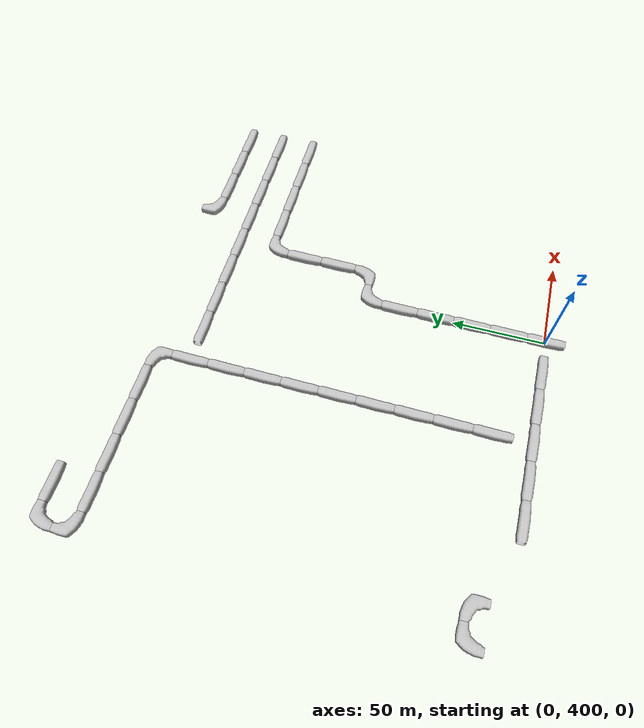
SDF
<sdf version="1.6">
 <world name="cave_16000_0">
  <include>
   <static>true</static>
   <name>cave_-8_21</name>
   <pose>-160 420 0 0 0 -1.5707963267948966</pose>
   <uri>model://cave_L_20m</uri>
  </include>
  <include>
   <static>true</static>
   <name>cave_-7_21</name>
   <pose>-140 420 0 0 0 3.141592653589793</pose>
   <uri>model://cave_L_20m</uri>
  </include>
  <include>
   <static>true</static>
   <name>cave_-5_20</name>
   <pose>-100 400 0 0 0 1.5707963267948966</pose>
   <uri>model://cave_straight_20m</uri>
  </include>
  <include>
   <static>true</static>
   <name>cave_-4_20</name>
   <pose>-80 400 0 0 0 1.5707963267948966</pose>
   <uri>model://cave_straight_20m</uri>
  </include>
  <include>
   <static>true</static>
   <name>cave_-3_20</name>
   <pose>-60 400 0 0 0 1.5707963267948966</pose>
   <uri>model://cave_straight_20m</uri>
  </include>
  <include>
   <static>true</static>
   <name>cave_-2_20</name>
   <pose>-40 400 0 0 0 1.5707963267948966</pose>
   <uri>model://cave_straight_20m</uri>
  </include>
  <include>
   <static>true</static>
   <name>cave_-1_20</name>
   <pose>-20 400 0 0 0 1.5707963267948966</pose>
   <uri>model://cave_straight_20m</uri>
  </include>
  <include>
   <static>true</static>
   <name>cave_0_20</name>
   <pose>0 400 0 0 0 0.0</pose>
   <uri>model://cave_straight_20m</uri>
  </include>
  <include>
   <static>true</static>
   <name>cave_0_21</name>
   <pose>0 420 0 0 0 0.0</pose>
   <uri>model://cave_straight_20m</uri>
  </include>
  <include>
   <static>true</static>
   <name>cave_0_22</name>
   <pose>0 440 0 0 0 0.0</pose>
   <uri>model://cave_straight_20m</uri>
  </include>
  <include>
   <static>true</static>
   <name>cave_0_23</name>
   <pose>0 460 0 0 0 0.0</pose>
   <uri>model://cave_straight_20m</uri>
  </include>
  <include>
   <static>true</static>
   <name>cave_0_24</name>
   <pose>0 480 0 0 0 0.0</pose>
   <uri>model://cave_straight_20m</uri>
  </include>
  <include>
   <static>true</static>
   <name>cave_0_25</name>
   <pose>0 500 0 0 0 -1.5707963267948966</pose>
   <uri>model://cave_L_20m</uri>
  </include>
  <include>
   <static>true</static>
   <name>cave_1_25</name>
   <pose>20 500 0 0 0 1.5707963267948966</pose>
   <uri>model://cave_L_20m</uri>
  </include>
  <include>
   <static>true</static>
   <name>cave_1_26</name>
   <pose>20 520 0 0 0 0.0</pose>
   <uri>model://cave_straight_20m</uri>
  </include>
  <include>
   <static>true</static>
   <name>cave_1_27</name>
   <pose>20 540 0 0 0 0.0</pose>
   <uri>model://cave_straight_20m</uri>
  </include>
  <include>
   <static>true</static>
   <name>cave_1_28</name>
   <pose>20 560 0 0 0 -1.5707963267948966</pose>
   <uri>model://cave_L_20m</uri>
  </include>
  <include>
   <static>true</static>
   <name>cave_2_28</name>
   <pose>40 560 0 0 0 1.5707963267948966</pose>
   <uri>model://cave_straight_20m</uri>
  </include>
  <include>
   <static>true</static>
   <name>cave_3_28</name>
   <pose>60 560 0 0 0 1.5707963267948966</pose>
   <uri>model://cave_straight_20m</uri>
  </include>
  <include>
   <static>true</static>
   <name>cave_4_28</name>
   <pose>80 560 0 0 0 1.5707963267948966</pose>
   <uri>model://cave_straight_20m</uri>
  </include>
  <include>
   <static>true</static>
   <name>cave_5_28</name>
   <pose>100 560 0 0 0 1.5707963267948966</pose>
   <uri>model://cave_straight_20m</uri>
  </include>
  <include>
   <static>true</static>
   <name>cave_2_30</name>
   <pose>40 600 0 0 0 0.0</pose>
   <uri>model://cave_L_20m</uri>
  </include>
  <include>
   <static>true</static>
   <name>cave_3_30</name>
   <pose>60 600 0 0 0 1.5707963267948966</pose>
   <uri>model://cave_straight_20m</uri>
  </include>
  <include>
   <static>true</static>
   <name>cave_4_30</name>
   <pose>80 600 0 0 0 1.5707963267948966</pose>
   <uri>model://cave_straight_20m</uri>
  </include>
  <include>
   <static>true</static>
   <name>cave_5_30</name>
   <pose>100 600 0 0 0 1.5707963267948966</pose>
   <uri>model://cave_straight_20m</uri>
  </include>
  <include>
   <static>true</static>
   <name>cave_5_29</name>
   <pose>100 580 0 0 0 1.5707963267948966</pose>
   <uri>model://cave_straight_20m</uri>
  </include>
  <include>
   <static>true</static>
   <name>cave_4_29</name>
   <pose>80 580 0 0 0 1.5707963267948966</pose>
   <uri>model://cave_straight_20m</uri>
  </include>
  <include>
   <static>true</static>
   <name>cave_3_29</name>
   <pose>60 580 0 0 0 1.5707963267948966</pose>
   <uri>model://cave_straight_20m</uri>
  </include>
  <include>
   <static>true</static>
   <name>cave_2_29</name>
   <pose>40 580 0 0 0 1.5707963267948966</pose>
   <uri>model://cave_straight_20m</uri>
  </include>
  <include>
   <static>true</static>
   <name>cave_1_29</name>
   <pose>20 580 0 0 0 1.5707963267948966</pose>
   <uri>model://cave_straight_20m</uri>
  </include>
  <include>
   <static>true</static>
   <name>cave_0_29</name>
   <pose>0 580 0 0 0 1.5707963267948966</pose>
   <uri>model://cave_straight_20m</uri>
  </include>
  <include>
   <static>true</static>
   <name>cave_-1_29</name>
   <pose>-20 580 0 0 0 1.5707963267948966</pose>
   <uri>model://cave_straight_20m</uri>
  </include>
  <include>
   <static>true</static>
   <name>cave_-2_29</name>
   <pose>-40 580 0 0 0 1.5707963267948966</pose>
   <uri>model://cave_straight_20m</uri>
  </include>
  <include>
   <static>true</static>
   <name>cave_-7_31</name>
   <pose>-140 620 0 0 0 1.5707963267948966</pose>
   <uri>model://cave_straight_20m</uri>
  </include>
  <include>
   <static>true</static>
   <name>cave_-8_31</name>
   <pose>-160 620 0 0 0 -1.5707963267948966</pose>
   <uri>model://cave_L_20m</uri>
  </include>
  <include>
   <static>true</static>
   <name>cave_-8_30</name>
   <pose>-160 600 0 0 0 0.0</pose>
   <uri>model://cave_L_20m</uri>
  </include>
  <include>
   <static>true</static>
   <name>cave_-7_30</name>
   <pose>-140 600 0 0 0 1.5707963267948966</pose>
   <uri>model://cave_straight_20m</uri>
  </include>
  <include>
   <static>true</static>
   <name>cave_-6_30</name>
   <pose>-120 600 0 0 0 1.5707963267948966</pose>
   <uri>model://cave_straight_20m</uri>
  </include>
  <include>
   <static>true</static>
   <name>cave_-5_30</name>
   <pose>-100 600 0 0 0 1.5707963267948966</pose>
   <uri>model://cave_straight_20m</uri>
  </include>
  <include>
   <static>true</static>
   <name>cave_-4_30</name>
   <pose>-80 600 0 0 0 1.5707963267948966</pose>
   <uri>model://cave_straight_20m</uri>
  </include>
  <include>
   <static>true</static>
   <name>cave_-3_30</name>
   <pose>-60 600 0 0 0 3.141592653589793</pose>
   <uri>model://cave_L_20m</uri>
  </include>
  <include>
   <static>true</static>
   <name>cave_-3_29</name>
   <pose>-60 580 0 0 0 0.0</pose>
   <uri>model://cave_straight_20m</uri>
  </include>
  <include>
   <static>true</static>
   <name>cave_-3_28</name>
   <pose>-60 560 0 0 0 0.0</pose>
   <uri>model://cave_straight_20m</uri>
  </include>
  <include>
   <static>true</static>
   <name>cave_-3_27</name>
   <pose>-60 540 0 0 0 0.0</pose>
   <uri>model://cave_straight_20m</uri>
  </include>
  <include>
   <static>true</static>
   <name>cave_-3_26</name>
   <pose>-60 520 0 0 0 0.0</pose>
   <uri>model://cave_straight_20m</uri>
  </include>
  <include>
   <static>true</static>
   <name>cave_-3_25</name>
   <pose>-60 500 0 0 0 0.0</pose>
   <uri>model://cave_straight_20m</uri>
  </include>
  <include>
   <static>true</static>
   <name>cave_-3_24</name>
   <pose>-60 480 0 0 0 0.0</pose>
   <uri>model://cave_straight_20m</uri>
  </include>
  <include>
   <static>true</static>
   <name>cave_-3_23</name>
   <pose>-60 460 0 0 0 0.0</pose>
   <uri>model://cave_straight_20m</uri>
  </include>
  <include>
   <static>true</static>
   <name>cave_-3_22</name>
   <pose>-60 440 0 0 0 0.0</pose>
   <uri>model://cave_straight_20m</uri>
  </include>
  <include>
   <static>true</static>
   <name>cave_-3_21</name>
   <pose>-60 420 0 0 0 0.0</pose>
   <uri>model://cave_straight_20m</uri>
  </include>
 </world>
</sdf>
